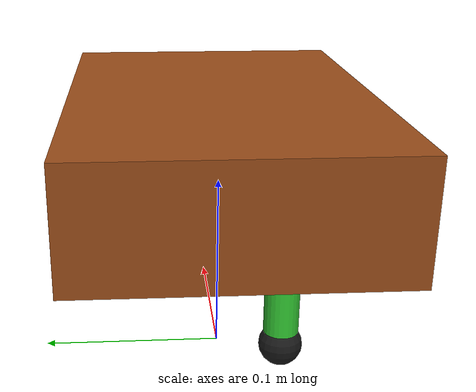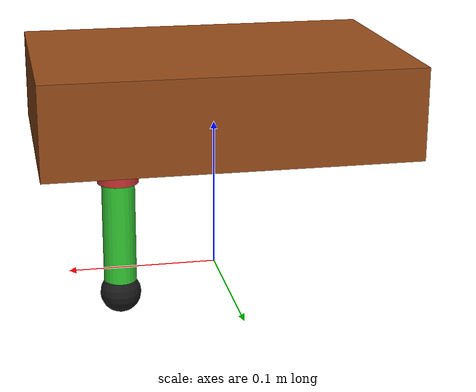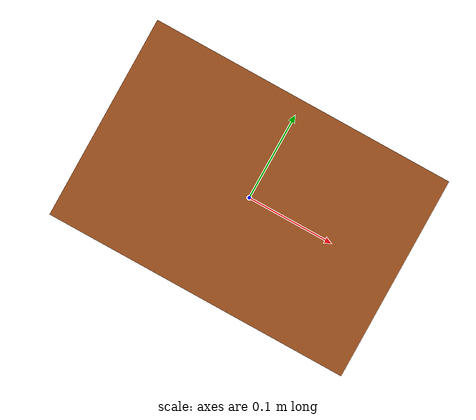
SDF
<?xml version="1.0" ?>
<sdf version="1.6">
  <model name="quadruped">
    <!-- Main body -->
    <link name="body">
      <pose>0 0 0.12 0 0 0</pose>
      <inertial>
        <mass>3.0</mass>
        <inertia>
          <ixx>0.15</ixx>
          <iyy>0.15</iyy>
          <izz>0.15</izz>
        </inertia>
      </inertial>
      <visual name="body_visual">
        <geometry>
          <box>
            <size>0.24 0.16 0.06</size>
          </box>
        </geometry>
        <material>
          <ambient>0.6 0.3 0.1 1</ambient>
          <diffuse>0.6 0.3 0.1 1</diffuse>
        </material>
      </visual>
      <collision name="body_collision">
        <geometry>
          <box>
            <size>0.24 0.16 0.06</size>
          </box>
        </geometry>
      </collision>
    </link>

    <!-- Front Right Leg -->
    <link name="front_right_upper">
      <pose>0.06 -0.05 0.07 0 0 0</pose>
      <inertial>
        <mass>0.2</mass>
        <inertia>
          <ixx>0.002</ixx>
          <iyy>0.002</iyy>
          <izz>0.002</izz>
        </inertia>
      </inertial>
      <visual name="upper_visual">
        <geometry>
          <cylinder>
            <radius>0.015</radius>
            <length>0.05</length>
          </cylinder>
        </geometry>
        <material>
          <ambient>0.8 0.2 0.2 1</ambient>
          <diffuse>0.8 0.2 0.2 1</diffuse>
        </material>
      </visual>
    </link>

    <joint name="front_right_shoulder" type="revolute">
      <parent>body</parent>
      <child>front_right_upper</child>
      <axis>
        <xyz>1 0 0</xyz>
        <limit>
          <lower>-1.57</lower>
          <upper>1.57</upper>
        </limit>
      </axis>
    </joint>

    <link name="front_right_lower">
      <pose>0.06 -0.05 0.01 0 0 0</pose>
      <inertial>
        <mass>0.15</mass>
        <inertia>
          <ixx>0.003</ixx>
          <iyy>0.003</iyy>
          <izz>0.003</izz>
        </inertia>
      </inertial>
      <visual name="lower_visual">
        <geometry>
          <cylinder>
            <radius>0.012</radius>
            <length>0.08</length>
          </cylinder>
        </geometry>
        <material>
          <ambient>0.2 0.8 0.2 1</ambient>
          <diffuse>0.2 0.8 0.2 1</diffuse>
        </material>
      </visual>
    </link>

    <joint name="front_right_elbow" type="revolute">
      <parent>front_right_upper</parent>
      <child>front_right_lower</child>
      <pose>0 0 -0.025 0 0 0</pose>
      <axis>
        <xyz>0 1 0</xyz>
        <limit>
          <lower>-1.57</lower>
          <upper>1.57</upper>
        </limit>
      </axis>
    </joint>

    <link name="front_right_foot">
      <pose>0.06 -0.05 -0.04 0 0 0</pose>
      <inertial>
        <mass>0.05</mass>
        <inertia>
          <ixx>0.001</ixx>
          <iyy>0.001</iyy>
          <izz>0.001</izz>
        </inertia>
      </inertial>
      <visual name="foot_visual">
        <geometry>
          <sphere>
            <radius>0.015</radius>
          </sphere>
        </geometry>
        <material>
          <ambient>0.1 0.1 0.1 1</ambient>
          <diffuse>0.1 0.1 0.1 1</diffuse>
        </material>
      </visual>
    </link>

    <joint name="front_right_wrist" type="revolute">
      <parent>front_right_lower</parent>
      <child>front_right_foot</child>
      <pose>0 0 -0.04 0 0 0</pose>
      <axis>
        <xyz>0 1 0</xyz>
        <limit>
          <lower>-0.5</lower>
          <upper>0.5</upper>
        </limit>
      </axis>
    </joint>

    <!-- Simplified - showing one leg, full model would have all 4 legs -->

  </model>
</sdf>
